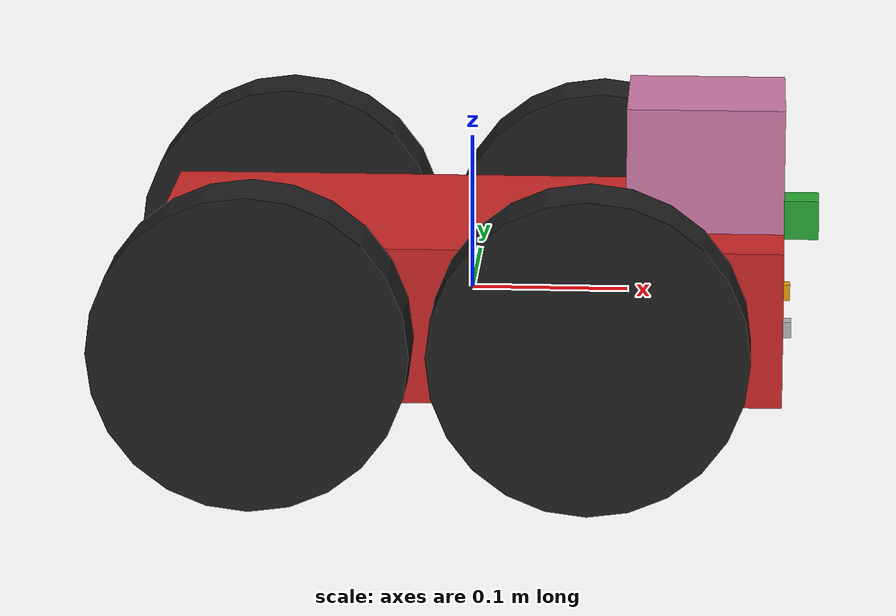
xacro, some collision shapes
<?xml version='1.0'?>

<robot name="Rover" xmlns:xacro="http://www.ros.org/wiki/xacro">

   <xacro:property name="cameraSize" value="0.025"/>
  <xacro:property name="cameraMass" value="0.1"/>

  <xacro:include filename="$(find rover_description)/urdf/rover.gazebo" />
  <xacro:include filename="$(find rover_description)/urdf/materials.xacro"/>

  <link name='base_footprint'>
     <pose>0 0 0.1 0 0 0</pose>

    <inertial>
      <mass value="15.0"/>
      <origin xyz="0.0 0 0.1" rpy=" 0 0 0"/>
      <inertia
          ixx="0.1" ixy="0" ixz="0"
          iyy="0.1" iyz="0"
          izz="0.1"
      />
    </inertial>

    <collision name='collision'>
      <geometry>
        <box size=".4 .2 .1"/>
      </geometry>
    </collision>

    <visual name='base_footprint_visual'>
      <origin xyz="0 0 0" rpy=" 0 0 0"/>
      <geometry>
        <box size=".4 .2 .1"/>
      </geometry>
      <material name="red"/>
    </visual>
  </link>

  <link name="left_wheel_back">
    <!--origin xyz="0.1 0.13 0.1" rpy="0 1.5707 1.5707"/-->
    <collision name="collision">
      <origin xyz="0 0 0" rpy="0 1.5707 1.5707"/>
      <geometry>
        <cylinder radius="0.1" length="0.05"/>
      </geometry>
    </collision>
    <visual name="left_wheel_visual">
      <origin xyz="0 0 0" rpy="0 1.5707 1.5707"/>
      <geometry>
        <cylinder radius="0.1" length="0.05"/>
      </geometry>
      <material name="black"/>
    </visual>
    <inertial>
      <origin xyz="0 0 0" rpy="0 1.5707 1.5707"/>
      <mass value="5"/>
      <inertia
        ixx=".1" ixy="0.0" ixz="0.0"
        iyy=".1" iyz="0.0"
        izz=".1"/>
    </inertial>
  </link>

 <joint type="continuous" name="left_wheel_back_hinge">
    <origin xyz="-0.13 0.15 0" rpy="0 0 0"/>
    <!--origin xyz="0.1 0.13 0" rpy="0 1.5707 1.5707"/-->
    <child link="left_wheel_back"/>
    <parent link="base_footprint"/>
    <axis xyz="0 1 0" rpy="0 0 0"/>
    <limit effort="10000" velocity="1000"/>
    <joint_properties damping="1.0" friction="1.0"/>
  </joint>

<link name="right_wheel_back">
    <!--origin xyz="0.1 -0.13 0.1" rpy="0 1.5707 1.5707"/-->
    <collision name="collision">
      <origin xyz="0 0 0" rpy="0 1.5707 1.5707"/>
      <geometry>
        <cylinder radius="0.1" length="0.05"/>
      </geometry>
    </collision>
    <visual name="right_wheel_visual">
      <origin xyz="0 0 0" rpy="0 1.5707 1.5707"/>
      <geometry>
        <cylinder radius="0.1" length="0.05"/>
      </geometry>
      <material name="black"/>
    </visual>
    <inertial>
      <origin xyz="0 0 0" rpy="0 1.5707 1.5707"/>
      <mass value="5"/>
      <inertia
        ixx=".1" ixy="0.0" ixz="0.0"
        iyy=".1" iyz="0.0"
        izz=".1"/>
    </inertial>
  </link>

   <joint type="continuous" name="right_wheel_back_hinge">
    <origin xyz="-0.13 -0.15 0" rpy="0 0 0"/>
    <!--origin xyz="0.1 -0.13 0" rpy="0 1.5707 1.5707"/-->
    <child link="right_wheel_back"/>
    <parent link="base_footprint"/>
    <axis xyz="0 1 0" rpy="0 0 0"/>
    <limit effort="10000" velocity="1000"/>
    <joint_properties damping="1.0" friction="1.0"/>
  </joint>

  <link name="left_wheel_front">
    <!--origin xyz="0.1 0.13 0.1" rpy="0 1.5707 1.5707"/-->
    <collision name="collision">
      <origin xyz="0 0 0" rpy="0 1.5707 1.5707"/>
      <geometry>
        <cylinder radius="0.1" length="0.05"/>
      </geometry>
    </collision>
    <visual name="left_wheel_visual">
      <origin xyz="0 0 0" rpy="0 1.5707 1.5707"/>
      <geometry>
        <cylinder radius="0.1" length="0.05"/>
      </geometry>
      <material name="black"/>
    </visual>
    <inertial>
      <origin xyz="0 0 0" rpy="0 1.5707 1.5707"/>
      <mass value="5"/>
      <inertia
        ixx=".1" ixy="0.0" ixz="0.0"
        iyy=".1" iyz="0.0"
        izz=".1"/>
    </inertial>
  </link>

  <link name="right_wheel_front">
    <!--origin xyz="0.1 -0.13 0.1" rpy="0 1.5707 1.5707"/-->
    <collision name="collision">
      <origin xyz="0 0 0" rpy="0 1.5707 1.5707"/>
      <geometry>
        <cylinder radius="0.1" length="0.05"/>
      </geometry>
    </collision>
    <visual name="right_wheel_visual">
      <origin xyz="0 0 0" rpy="0 1.5707 1.5707"/>
      <geometry>
        <cylinder radius="0.1" length="0.05"/>
      </geometry>
      <material name="black"/>
    </visual>
    <inertial>
      <origin xyz="0 0 0" rpy="0 1.5707 1.5707"/>
      <mass value="5"/>
      <inertia
        ixx=".1" ixy="0.0" ixz="0.0"
        iyy=".1" iyz="0.0"
        izz=".1"/>
    </inertial>
  </link>

  <joint type="continuous" name="left_wheel_front_hinge">
    <origin xyz="0.08 0.15 0" rpy="0 0 0"/>
    <!--origin xyz="0.1 0.13 0" rpy="0 1.5707 1.5707"/-->
    <child link="left_wheel_front"/>
    <parent link="base_footprint"/>
    <axis xyz="0 1 0" rpy="0 0 0"/>
    <limit effort="10000" velocity="1000"/>
    <joint_properties damping="1.0" friction="1.0"/>
  </joint>

  <joint type="continuous" name="right_wheel_front_hinge">
    <origin xyz="0.08 -0.15 0" rpy="0 0 0"/>
    <!--origin xyz="0.1 -0.13 0" rpy="0 1.5707 1.5707"/-->
    <child link="right_wheel_front"/>
    <parent link="base_footprint"/>
    <axis xyz="0 1 0" rpy="0 0 0"/>
    <limit effort="10000" velocity="1000"/>
    <joint_properties damping="1.0" friction="1.0"/>
  </joint>

<link name="camera">
    <collision>
      <origin xyz="0 0 0" rpy="0 0 0"/>
      <geometry>
        <box size="${cameraSize} ${cameraSize} ${cameraSize}"/>
      </geometry>
    </collision>

    <visual>
      <origin xyz="0 0 0" rpy="0 0 0"/>
      <geometry>
        <box size="${cameraSize} ${cameraSize} ${cameraSize}"/>
      </geometry>
      <material name="green"/>
    </visual>

    <inertial>
      <mass value="${cameraMass}" />
      <origin xyz="0 0 0" rpy="0 0 0"/>
      <box_inertia m="${cameraMass}" x="${cameraSize}" y="${cameraSize}" z="${cameraSize}" />
      <inertia ixx="1e-6" ixy="0" ixz="0" iyy="1e-6" iyz="0" izz="1e-6" />
    </inertial>
  </link>

  <joint name="camera_joint" type="fixed">
    <axis xyz="0 1 0" />
    <origin xyz=".21 0 0.05" rpy="0 0 0"/>
    <parent link="base_footprint"/>
    <child link="camera"/>
  </joint>

<joint name="hokuyo_joint" type="fixed">
    <axis xyz="0 1 0" />
    <origin xyz=".15 0 .08" rpy="0 0 0"/>
    <parent link="base_footprint"/>
    <child link="hokuyo"/>
  </joint>

  <!-- Hokuyo Laser -->
  <link name="hokuyo">
    <collision>
      <origin xyz="0 0 0" rpy="0 0 0"/>
      <geometry>
    <box size="0.1 0.1 0.1"/>
      </geometry>
    </collision>

    <visual>
      <origin xyz="0 0 0" rpy="0 0 0"/>
      <geometry>
        <mesh filename="package://rover_description/meshes/hokuyo.dae"/>
      </geometry>
    </visual>

    <inertial>
      <mass value="1e-5" />
      <origin xyz="0 0 0" rpy="0 0 0"/>
      <inertia ixx="1e-6" ixy="0" ixz="0" iyy="1e-6" iyz="0" izz="1e-6" />
    </inertial>
  </link>

<joint name="sonar_front_joint" type="fixed">
    <axis xyz="0 1 0" />
    <origin rpy="0 0 0" xyz="0.2 -0.09 0" />
    <parent link="base_footprint"/>
    <child link="base_sonar_front"/>
</joint>
<link name="base_sonar_front">
    <collision>
      <origin xyz="0 0 0" rpy="0 0 0"/>
      <geometry>
        <box size="0.01 0.01 0.01"/>
      </geometry>
    </collision>
    <visual>
      <origin xyz="0 0 0" rpy="0 0 0"/>
      <geometry>
        <box size="0.01 0.01 0.01"/>
      </geometry>
    </visual>
    <inertial>
      <mass value="1e-5" />
      <origin xyz="0 0 0" rpy="0 0 0"/>
      <inertia ixx="1e-6" ixy="0" ixz="0" iyy="1e-6" iyz="0" izz="1e-6" />
    </inertial>
 </link>

<link name="base_sonar_left">
    <collision>
      <origin xyz="0 0 0" rpy="0 0 0"/>
      <geometry>
        <box size="0.01 0.01 0.01"/>
      </geometry>
    </collision>
    <visual>
      <origin xyz="0 0 0" rpy="0 0 0"/>
      <geometry>
        <box size="0.01 0.01 0.01"/>
      </geometry>
    </visual>
    <inertial>
      <mass value="1e-5" />
      <origin xyz="0 0 0" rpy="0 0 0"/>
      <inertia ixx="1e-6" ixy="0" ixz="0" iyy="1e-6" iyz="0" izz="1e-6" />
    </inertial>
 </link>
<joint name="sonar_left_joint" type="fixed">
    <axis xyz="0 1 0" />
    <origin rpy="0 0 0" xyz="0.2 0 0" />
    <parent link="base_footprint"/>
    <child link="base_sonar_left"/>
</joint>

</robot>
